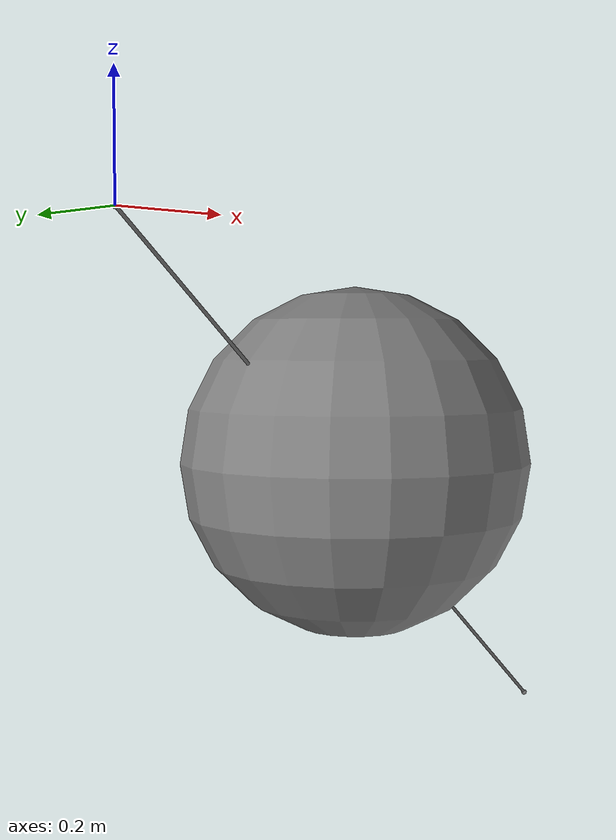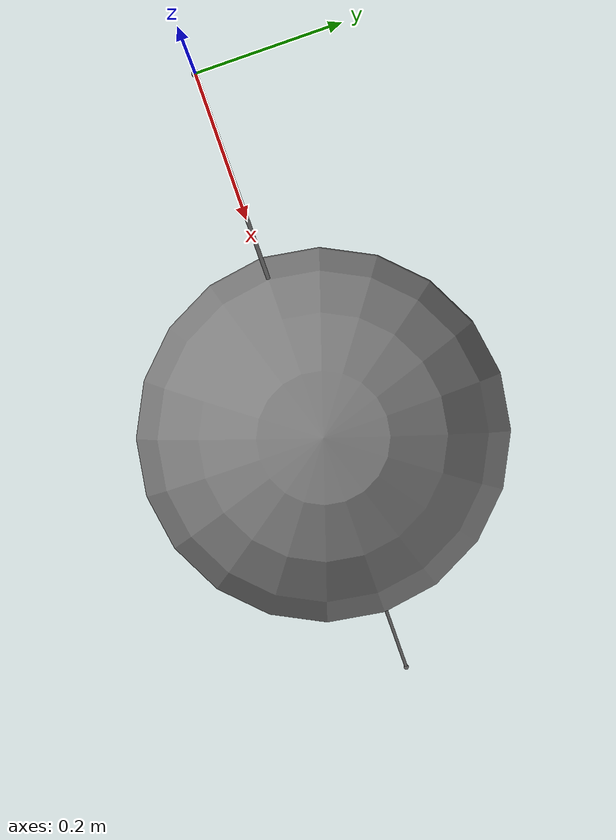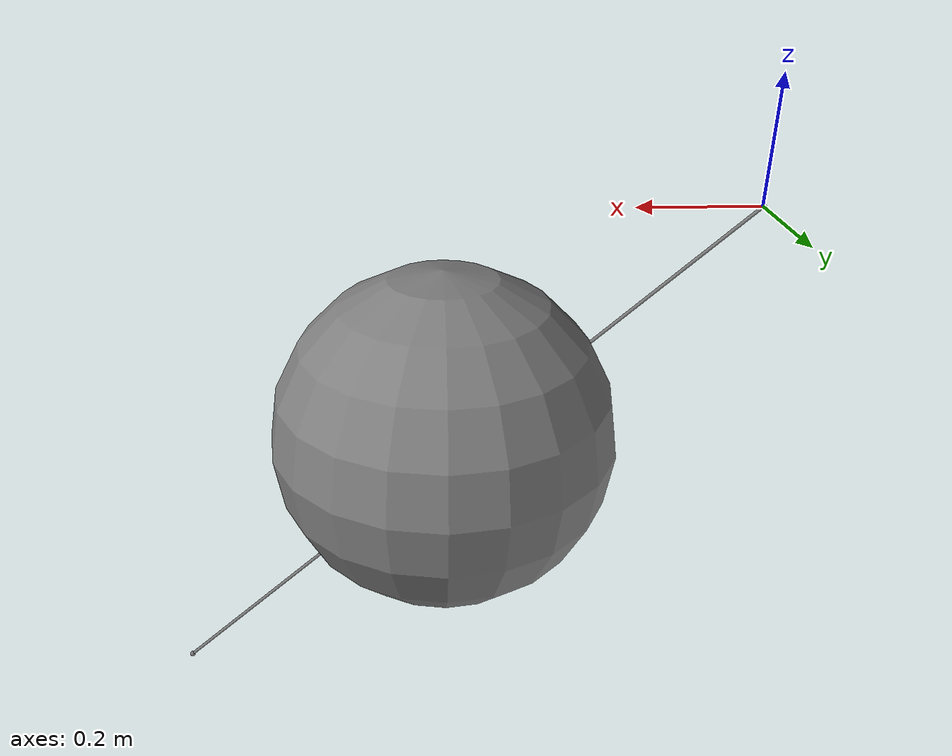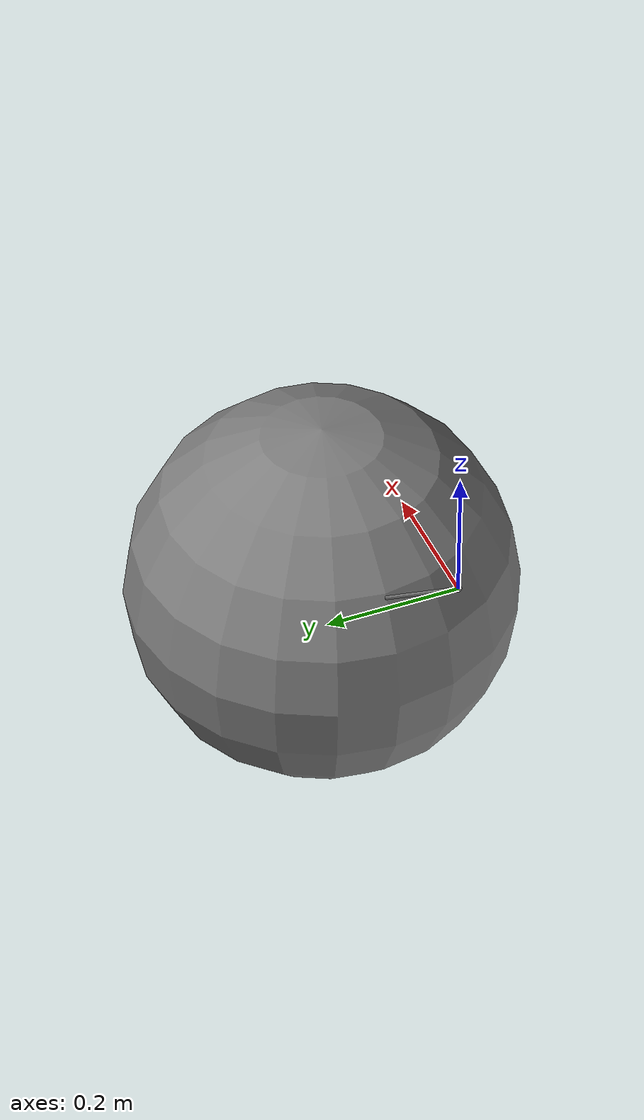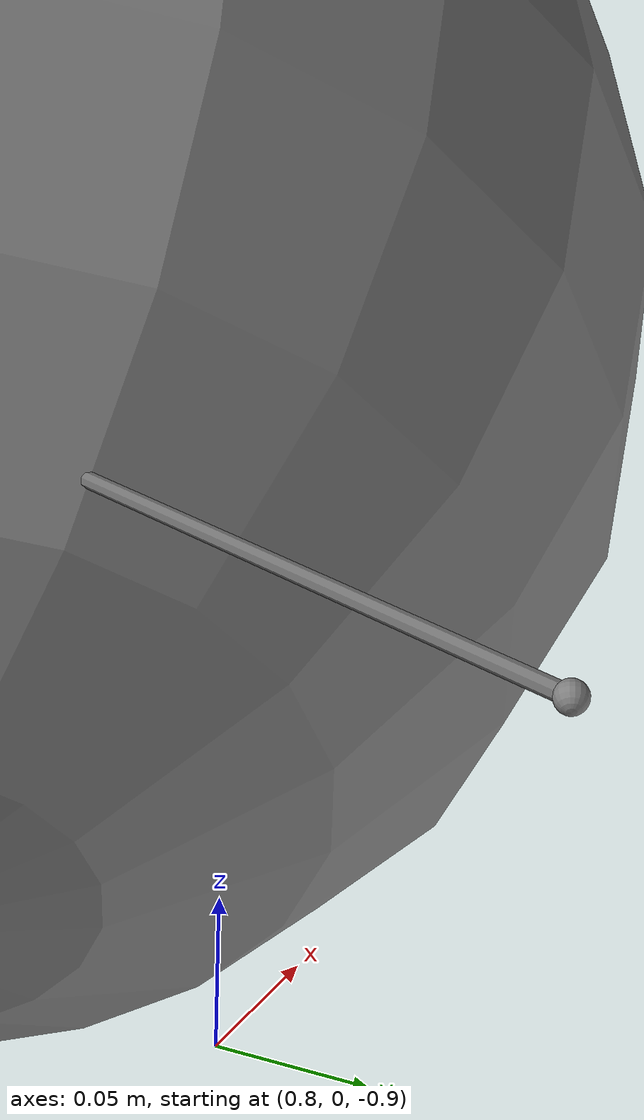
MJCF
<mujoco model="tendon_wrap">
  <compiler angle="radian"/>
  <option timestep="0.005" gravity="0 0 -9.81"
          integrator="RK4" solver="PGS" cone="pyramidal" iterations="20"/>
  <worldbody>
    <body name="rig" pos="0 0 0">
      <inertial pos="0 0 0" mass="1.0" diaginertia="1.0 1.0 1.0"/>
      <geom name="wrap_sphere" type="sphere" size="0.3" pos="0.5 0 -0.4"/>
      <site name="anchor" pos="0 0 0"/>
      <body name="mass" pos="1.0 0 -0.9">
        <inertial pos="0 0 0" mass="1.0" diaginertia="1e-3 1e-3 1e-3"/>
        <joint name="lift" type="slide" axis="0 0 -1" pos="0 0 0" damping="4.0"/>
        <site name="attach" pos="0 0 0"/>
      </body>
    </body>
  </worldbody>
  <tendon>
    <spatial name="cable" springlength="1.5" stiffness="200" damping="10">
      <site site="anchor"/>
      <geom geom="wrap_sphere"/>
      <site site="attach"/>
    </spatial>
  </tendon>
</mujoco>
